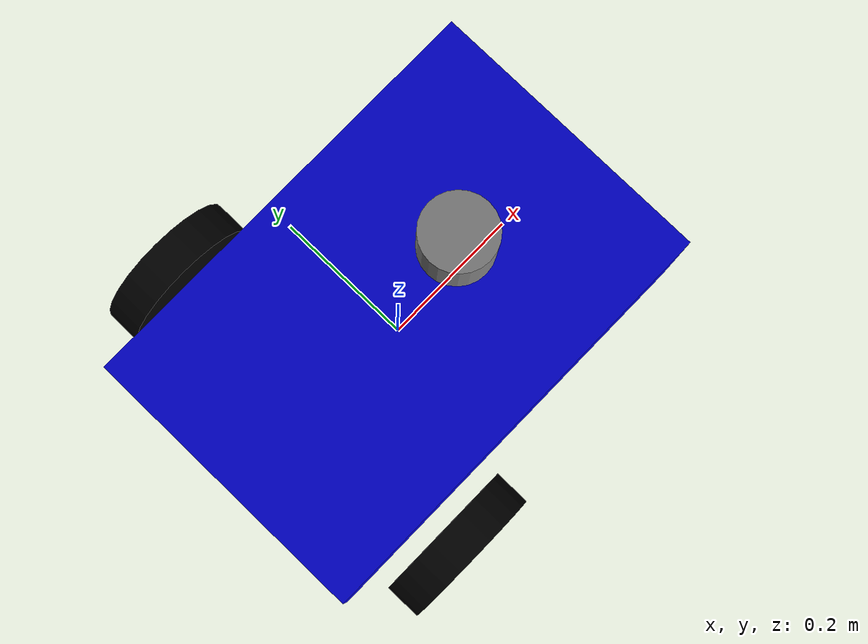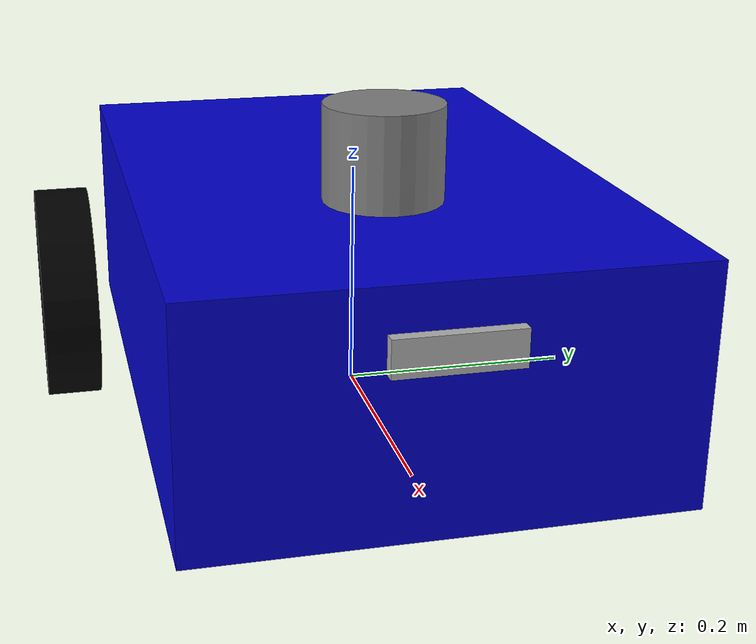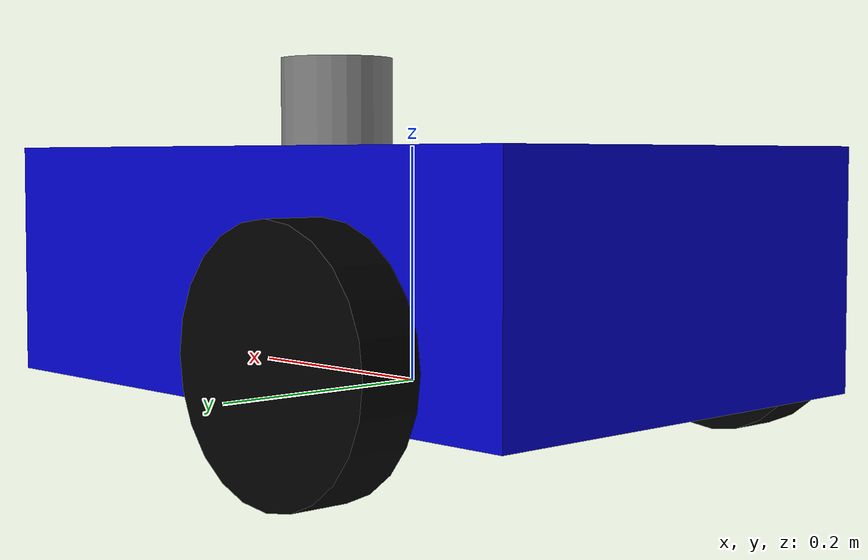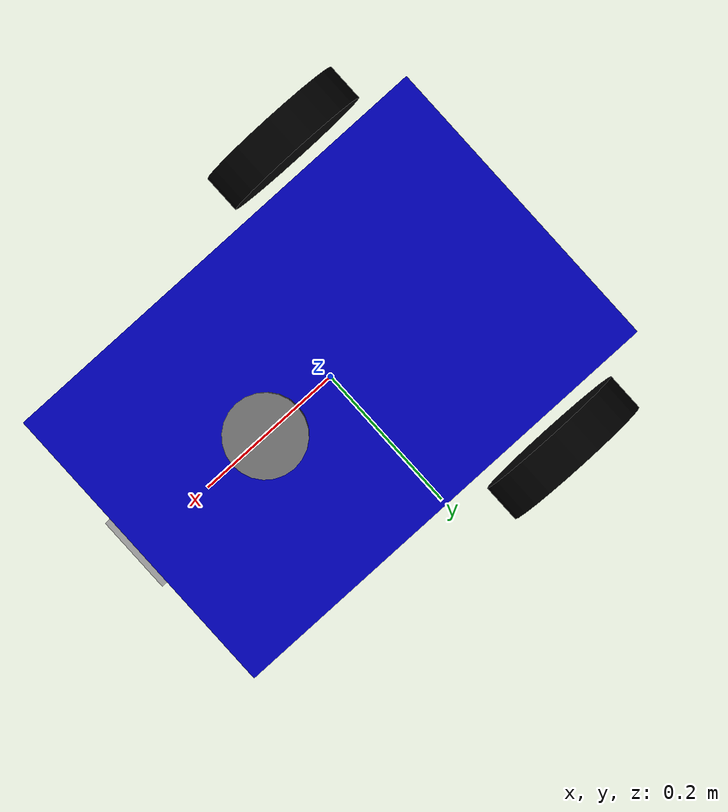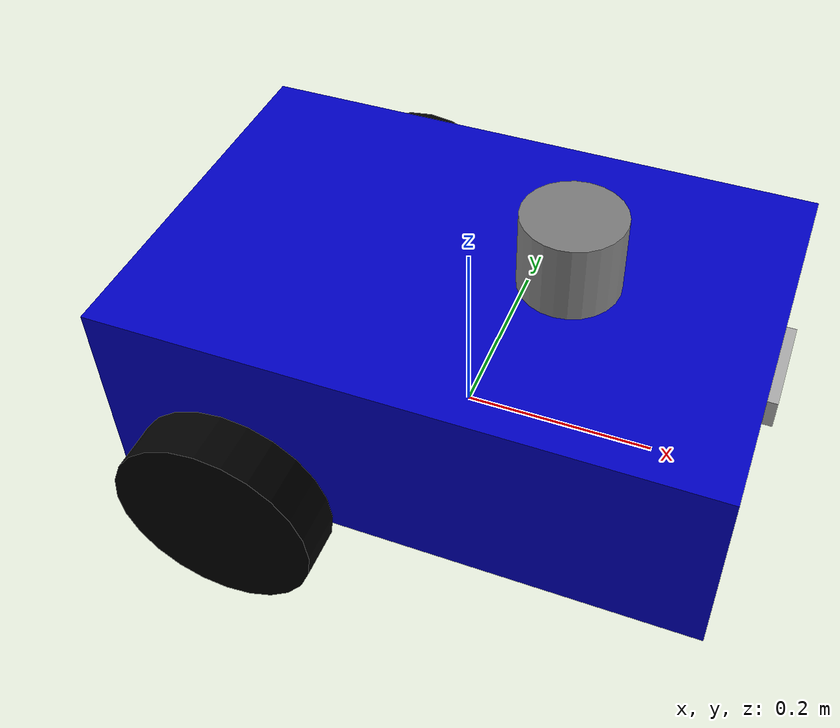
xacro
<?xml version="1.0"?>
<robot name="agv_bot" xmlns:xacro="http://www.ros.org/wiki/xacro">

  <xacro:property name="base_width" value="0.4"/>
  <xacro:property name="base_length" value="0.6"/>
  <xacro:property name="base_height" value="0.2"/>
  <xacro:property name="wheel_radius" value="0.1"/>
  <xacro:property name="wheel_width" value="0.05"/>
  <xacro:property name="wheel_ygap" value="0.05"/>
  <xacro:property name="wheel_zoff" value="0.05"/>
  <xacro:property name="wheel_xoff" value="0.15"/>

  <material name="blue"> <color rgba="0 0 0.8 1"/> </material>
  <material name="black"> <color rgba="0 0 0 1"/> </material>
  <material name="gray"> <color rgba="0.5 0.5 0.5 1"/> </material>

  <xacro:macro name="inertial_box" params="mass x y z">
    <inertial>
      <origin xyz="0 0 0" rpy="0 0 0"/>
      <mass value="${mass}"/>
      <inertia ixx="${(1/12) * mass * (y*y+z*z)}" ixy="0.0" ixz="0.0"
               iyy="${(1/12) * mass * (x*x+z*z)}" iyz="0.0"
               izz="${(1/12) * mass * (x*x+y*y)}"/>
    </inertial>
  </xacro:macro>

  <xacro:macro name="inertial_cylinder" params="mass length radius">
    <inertial>
      <origin xyz="0 0 0" rpy="0 0 0"/>
      <mass value="${mass}"/>
      <inertia ixx="${(1/12) * mass * (3*radius*radius + length*length)}" ixy="0.0" ixz="0.0"
               iyy="${(1/12) * mass * (3*radius*radius + length*length)}" iyz="0.0"
               izz="${(1/2) * mass * (radius*radius)}"/>
    </inertial>
  </xacro:macro>

  <link name="base_footprint"/>
  <joint name="base_footprint_joint" type="fixed">
    <parent link="base_footprint"/>
    <child link="base_link"/>
    <origin xyz="0 0 0.1" rpy="0 0 0"/>
  </joint>

  <link name="base_link">
    <visual>
      <geometry> <box size="${base_length} ${base_width} ${base_height}"/> </geometry>
      <material name="blue"/>
    </visual>
    <collision>
      <geometry> <box size="${base_length} ${base_width} ${base_height}"/> </geometry>
    </collision>
    <xacro:inertial_box mass="10.0" x="${base_length}" y="${base_width}" z="${base_height}"/>
  </link>

  <xacro:macro name="wheel" params="prefix x_reflect y_reflect">
    <link name="${prefix}_wheel">
      <visual>
        <origin xyz="0 0 0" rpy="${pi/2} 0 0"/>
        <geometry> <cylinder radius="${wheel_radius}" length="${wheel_width}"/> </geometry>
        <material name="black"/>
      </visual>
      <collision>
        <origin xyz="0 0 0" rpy="${pi/2} 0 0"/>
        <geometry> <cylinder radius="${wheel_radius}" length="${wheel_width}"/> </geometry>
      </collision>
      <xacro:inertial_cylinder mass="0.5" length="${wheel_width}" radius="${wheel_radius}"/>
    </link>

    <joint name="${prefix}_wheel_joint" type="continuous">
      <parent link="base_link"/>
      <child link="${prefix}_wheel"/>
      <origin xyz="${x_reflect*wheel_xoff} ${y_reflect*(base_width/2+wheel_ygap)} ${-wheel_zoff}" rpy="0 0 0"/>
      <axis xyz="0 1 0"/>
    </joint>
  </xacro:macro>

  <xacro:wheel prefix="drivewhl_l" x_reflect="-1" y_reflect="1" />
  <xacro:wheel prefix="drivewhl_r" x_reflect="-1" y_reflect="-1" />

  <link name="front_caster">
    <visual>
      <geometry> <sphere radius="${wheel_radius/2}"/> </geometry>
      <material name="gray"/>
    </visual>
    <collision>
      <geometry> <sphere radius="${wheel_radius/2}"/> </geometry>
    </collision>
    <xacro:inertial_cylinder mass="0.2" length="0.05" radius="${wheel_radius/2}"/>
  </link>

  <joint name="caster_joint" type="fixed">
    <parent link="base_link"/>
    <child link="front_caster"/>
    <origin xyz="${wheel_xoff} 0 ${-wheel_zoff - wheel_radius/2}" rpy="0 0 0"/>
  </joint>

  <link name="laser_link">
    <visual>
      <geometry> <cylinder radius="0.05" length="0.08"/> </geometry>
      <material name="gray"/>
    </visual>
    <xacro:inertial_cylinder mass="0.1" length="0.08" radius="0.05"/>
  </link>
  <joint name="laser_joint" type="fixed">
    <parent link="base_link"/>
    <child link="laser_link"/>
    <origin xyz="0.1 0 ${base_height/2 + 0.04}" rpy="0 0 0"/>
  </joint>

  <link name="imu_link">
    <xacro:inertial_box mass="0.01" x="0.01" y="0.01" z="0.01"/>
  </link>
  <joint name="imu_joint" type="fixed">
    <parent link="base_link"/>
    <child link="imu_link"/>
    <origin xyz="0 0 0" rpy="0 0 0"/>
  </joint>

  <link name="camera_link">
    <visual>
      <geometry> <box size="0.02 0.1 0.03"/> </geometry>
    </visual>
    <xacro:inertial_box mass="0.05" x="0.02" y="0.1" z="0.03"/>
  </link>
  <joint name="camera_joint" type="fixed">
    <parent link="base_link"/>
    <child link="camera_link"/>
    <origin xyz="${base_length/2} 0 0.05" rpy="0 0 0"/>
  </joint>

  <link name="camera_link_optical"></link>
  <joint name="camera_optical_joint" type="fixed">
    <parent link="camera_link"/>
    <child link="camera_link_optical"/>
    <origin xyz="0 0 0" rpy="${-pi/2} 0 ${-pi/2}"/>
  </joint>

  <gazebo reference="base_link">
    <material>Gazebo/Blue</material>
  </gazebo>

  <gazebo reference="drivewhl_l_wheel">
    <material>Gazebo/Black</material>
  </gazebo>

  <gazebo reference="drivewhl_r_wheel">
    <material>Gazebo/Black</material>
  </gazebo>

  <gazebo reference="front_caster">
    <material>Gazebo/Grey</material>
    <mu1 value="0.001"/>
    <mu2 value="0.001"/>
  </gazebo>

  <gazebo reference="laser_link">
    <material>Gazebo/Black</material>
  </gazebo>

  <gazebo>
    <plugin name='diff_drive' filename='libgazebo_ros_diff_drive.so'>
      <ros> <namespace>/</namespace> </ros>
      <left_joint>drivewhl_l_wheel_joint</left_joint>
      <right_joint>drivewhl_r_wheel_joint</right_joint>
      <wheel_separation>${base_width + 2*wheel_ygap}</wheel_separation>
      <wheel_diameter>${2*wheel_radius}</wheel_diameter>
      <publish_odom>true</publish_odom>
      <publish_odom_tf>false</publish_odom_tf>
      <publish_wheel_tf>true</publish_wheel_tf>
      <odometry_frame>odom_raw</odometry_frame>
      <robot_base_frame>base_footprint</robot_base_frame>
      <max_wheel_torque>200</max_wheel_torque>
      <max_wheel_acceleration>10.0</max_wheel_acceleration>
    </plugin>
  </gazebo>

  <gazebo reference="laser_link">
    <sensor name="lidar" type="ray">
      <always_on>true</always_on>
      <visualize>true</visualize> <update_rate>10</update_rate>
      <ray>
        <scan>
          <horizontal>
            <samples>360</samples>
            <resolution>1</resolution>
            <min_angle>-3.14</min_angle>
            <max_angle>3.14</max_angle>
          </horizontal>
          </scan>
        <range>
          <min>0.1</min> <max>12.0</max>
          <resolution>0.01</resolution>
        </range>
      </ray>
      <plugin name="lidar_plugin" filename="libgazebo_ros_ray_sensor.so">
        <ros>
          <remapping>~/out:=scan</remapping>
        </ros>
        <output_type>sensor_msgs/LaserScan</output_type>
        <frame_name>laser_link</frame_name>
      </plugin>
    </sensor>
  </gazebo>

  <gazebo reference="imu_link">
    <sensor name="imu_sensor" type="imu">
      <always_on>true</always_on>
      <update_rate>100</update_rate>
      <plugin name="imu_plugin" filename="libgazebo_ros_imu_sensor.so">
        <ros>
          <remapping>~/out:=imu</remapping>
        </ros>
      </plugin>
    </sensor>
  </gazebo>

  <gazebo reference="camera_link">
    <sensor name="depth_camera" type="depth">
      <visualize>true</visualize>
      <update_rate>30.0</update_rate>
      <camera name="camera">
        <horizontal_fov>1.047</horizontal_fov>
        <image>
          <width>640</width>
          <height>480</height>
          <format>R8G8B8</format>
        </image>
        <clip>
          <near>0.05</near>
          <far>3.0</far>
        </clip>
     </camera>
      <plugin name="camera_controller" filename="libgazebo_ros_camera.so">
        <ros>
          <remapping>depth/image_raw:=depth_image</remapping>
          <remapping>points:=camera_points</remapping>
        </ros>
        <frame_name>camera_link_optical</frame_name>
        <min_depth>0.1</min_depth>
        <max_depth>10.0</max_depth>
      </plugin>
    </sensor>
  </gazebo>

</robot>
